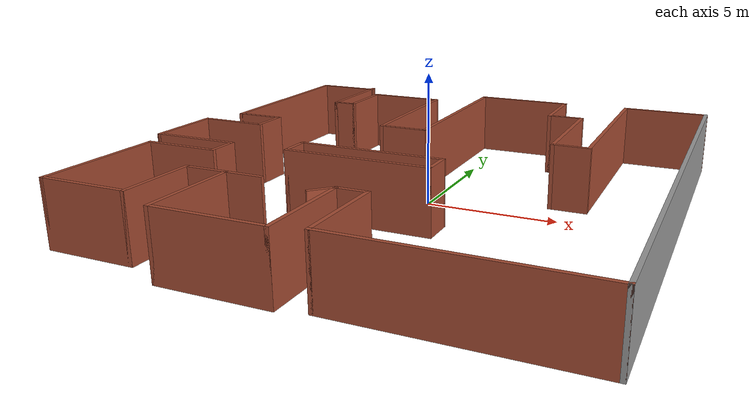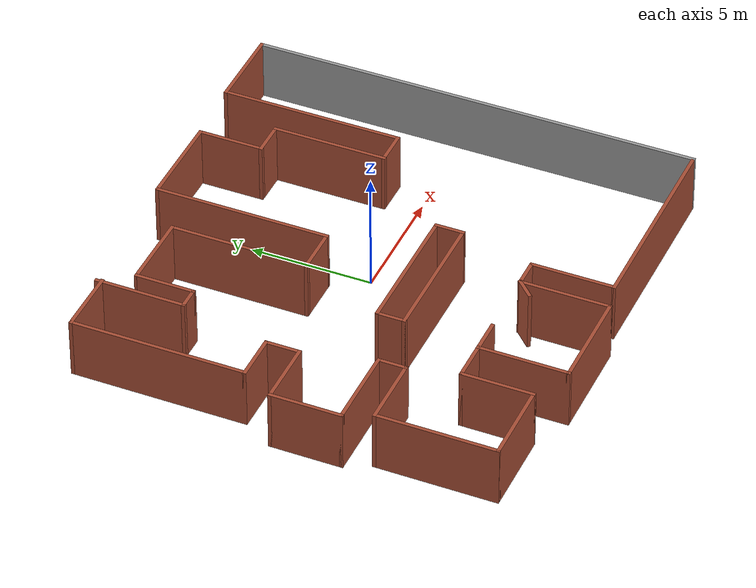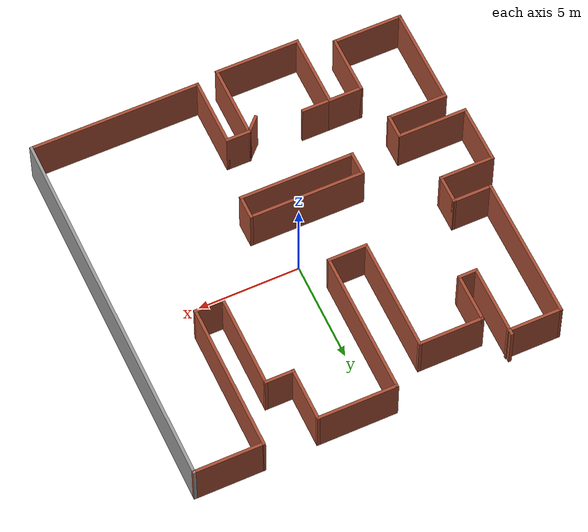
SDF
<?xml version='1.0'?>
<sdf version='1.6'>
  <model name='map_106'>
    <pose frame=''>-0.425576 -0.586137 0 0 -0 0</pose>
    <link name='Wall_16'>
      <collision name='Wall_16_Collision'>
        <geometry>
          <box>
            <size>7.25 0.15 2.5</size>
          </box>
        </geometry>
        <pose frame=''>0 0 1.25 0 -0 0</pose>
      </collision>
      <visual name='Wall_16_Visual'>
        <pose frame=''>0 0 1.25 0 -0 0</pose>
        <geometry>
          <box>
            <size>7.25 0.15 2.5</size>
          </box>
        </geometry>
        <material>
          <script>
            <uri>file://media/materials/scripts/gazebo.material</uri>
            <name>Gazebo/Bricks</name>
          </script>
          <ambient>1 1 1 1</ambient>
        </material>
        <meta>
          <layer>0</layer>
        </meta>
      </visual>
      <pose frame=''>-8.75 5.15 0 0 -0 -1.5708</pose>
    </link>
    <link name='Wall_17'>
      <collision name='Wall_17_Collision'>
        <geometry>
          <box>
            <size>2 0.15 2.5</size>
          </box>
        </geometry>
        <pose frame=''>0 0 1.25 0 -0 0</pose>
      </collision>
      <visual name='Wall_17_Visual'>
        <pose frame=''>0 0 1.25 0 -0 0</pose>
        <geometry>
          <box>
            <size>2 0.15 2.5</size>
          </box>
        </geometry>
        <material>
          <script>
            <uri>file://media/materials/scripts/gazebo.material</uri>
            <name>Gazebo/Bricks</name>
          </script>
          <ambient>1 1 1 1</ambient>
        </material>
        <meta>
          <layer>0</layer>
        </meta>
      </visual>
      <pose frame=''>-7.825 1.6 0 0 -0 0</pose>
    </link>
    <link name='Wall_18'>
      <collision name='Wall_18_Collision'>
        <geometry>
          <box>
            <size>1.5 0.15 2.5</size>
          </box>
        </geometry>
        <pose frame=''>0 0 1.25 0 -0 0</pose>
      </collision>
      <visual name='Wall_18_Visual'>
        <pose frame=''>0 0 1.25 0 -0 0</pose>
        <geometry>
          <box>
            <size>1.5 0.15 2.5</size>
          </box>
        </geometry>
        <material>
          <script>
            <uri>file://media/materials/scripts/gazebo.material</uri>
            <name>Gazebo/Bricks</name>
          </script>
          <ambient>1 1 1 1</ambient>
        </material>
        <meta>
          <layer>0</layer>
        </meta>
      </visual>
      <pose frame=''>-6.9 0.924999 0 0 -0 -1.5708</pose>
    </link>
    <link name='Wall_19'>
      <collision name='Wall_19_Collision'>
        <geometry>
          <box>
            <size>2.75 0.15 2.5</size>
          </box>
        </geometry>
        <pose frame=''>0 0 1.25 0 -0 0</pose>
      </collision>
      <visual name='Wall_19_Visual'>
        <pose frame=''>0 0 1.25 0 -0 0</pose>
        <geometry>
          <box>
            <size>2.75 0.15 2.5</size>
          </box>
        </geometry>
        <material>
          <script>
            <uri>file://media/materials/scripts/gazebo.material</uri>
            <name>Gazebo/Bricks</name>
          </script>
          <ambient>1 1 1 1</ambient>
        </material>
        <meta>
          <layer>0</layer>
        </meta>
      </visual>
      <pose frame=''>-8.2 0.249999 0 0 -0 3.14159</pose>
    </link>
    <link name='Wall_20'>
      <collision name='Wall_20_Collision'>
        <geometry>
          <box>
            <size>3 0.15 2.5</size>
          </box>
        </geometry>
        <pose frame=''>0 0 1.25 0 -0 0</pose>
      </collision>
      <visual name='Wall_20_Visual'>
        <pose frame=''>0 0 1.25 0 -0 0</pose>
        <geometry>
          <box>
            <size>3 0.15 2.5</size>
          </box>
        </geometry>
        <material>
          <script>
            <uri>file://media/materials/scripts/gazebo.material</uri>
            <name>Gazebo/Bricks</name>
          </script>
          <ambient>1 1 1 1</ambient>
        </material>
        <meta>
          <layer>0</layer>
        </meta>
      </visual>
      <pose frame=''>-9.5 -1.175 0 0 -0 -1.5708</pose>
    </link>
    <link name='Wall_21'>
      <collision name='Wall_21_Collision'>
        <geometry>
          <box>
            <size>3.5 0.15 2.5</size>
          </box>
        </geometry>
        <pose frame=''>0 0 1.25 0 -0 0</pose>
      </collision>
      <visual name='Wall_21_Visual'>
        <pose frame=''>0 0 1.25 0 -0 0</pose>
        <geometry>
          <box>
            <size>3.5 0.15 2.5</size>
          </box>
        </geometry>
        <material>
          <script>
            <uri>file://media/materials/scripts/gazebo.material</uri>
            <name>Gazebo/Bricks</name>
          </script>
          <ambient>1 1 1 1</ambient>
        </material>
        <meta>
          <layer>0</layer>
        </meta>
      </visual>
      <pose frame=''>-7.825 -2.6 0 0 -0 0</pose>
    </link>
    <link name='Wall_22'>
      <collision name='Wall_22_Collision'>
        <geometry>
          <box>
            <size>1.25 0.15 2.5</size>
          </box>
        </geometry>
        <pose frame=''>0 0 1.25 0 -0 0</pose>
      </collision>
      <visual name='Wall_22_Visual'>
        <pose frame=''>0 0 1.25 0 -0 0</pose>
        <geometry>
          <box>
            <size>1.25 0.15 2.5</size>
          </box>
        </geometry>
        <material>
          <script>
            <uri>file://media/materials/scripts/gazebo.material</uri>
            <name>Gazebo/Bricks</name>
          </script>
          <ambient>1 1 1 1</ambient>
        </material>
        <meta>
          <layer>0</layer>
        </meta>
      </visual>
      <pose frame=''>-6.15 -3.15 0 0 -0 -1.5708</pose>
    </link>
    <link name='Wall_25'>
      <collision name='Wall_25_Collision'>
        <geometry>
          <box>
            <size>3 0.15 2.5</size>
          </box>
        </geometry>
        <pose frame=''>0 0 1.25 0 -0 0</pose>
      </collision>
      <visual name='Wall_25_Visual'>
        <pose frame=''>0 0 1.25 0 -0 0</pose>
        <geometry>
          <box>
            <size>3 0.15 2.5</size>
          </box>
        </geometry>
        <material>
          <script>
            <uri>file://media/materials/scripts/gazebo.material</uri>
            <name>Gazebo/Bricks</name>
          </script>
          <ambient>1 1 1 1</ambient>
        </material>
        <meta>
          <layer>0</layer>
        </meta>
      </visual>
      <pose frame=''>-7.575 -3.7 0 0 -0 3.14159</pose>
    </link>
    <link name='Wall_26'>
      <collision name='Wall_26_Collision'>
        <geometry>
          <box>
            <size>5 0.15 2.5</size>
          </box>
        </geometry>
        <pose frame=''>0 0 1.25 0 -0 0</pose>
      </collision>
      <visual name='Wall_26_Visual'>
        <pose frame=''>0 0 1.25 0 -0 0</pose>
        <geometry>
          <box>
            <size>5 0.15 2.5</size>
          </box>
        </geometry>
        <material>
          <script>
            <uri>file://media/materials/scripts/gazebo.material</uri>
            <name>Gazebo/Bricks</name>
          </script>
          <ambient>1 1 1 1</ambient>
        </material>
        <meta>
          <layer>0</layer>
        </meta>
      </visual>
      <pose frame=''>-9 -6.125 0 0 -0 -1.5708</pose>
    </link>
    <link name='Wall_27'>
      <collision name='Wall_27_Collision'>
        <geometry>
          <box>
            <size>3.5 0.15 2.5</size>
          </box>
        </geometry>
        <pose frame=''>0 0 1.25 0 -0 0</pose>
      </collision>
      <visual name='Wall_27_Visual'>
        <pose frame=''>0 0 1.25 0 -0 0</pose>
        <geometry>
          <box>
            <size>3.5 0.15 2.5</size>
          </box>
        </geometry>
        <material>
          <script>
            <uri>file://media/materials/scripts/gazebo.material</uri>
            <name>Gazebo/Bricks</name>
          </script>
          <ambient>1 1 1 1</ambient>
        </material>
        <meta>
          <layer>0</layer>
        </meta>
      </visual>
      <pose frame=''>-7.325 -8.55 0 0 -0 0</pose>
    </link>
    <link name='Wall_28'>
      <collision name='Wall_28_Collision'>
        <geometry>
          <box>
            <size>3 0.15 2.5</size>
          </box>
        </geometry>
        <pose frame=''>0 0 1.25 0 -0 0</pose>
      </collision>
      <visual name='Wall_28_Visual'>
        <pose frame=''>0 0 1.25 0 -0 0</pose>
        <geometry>
          <box>
            <size>3 0.15 2.5</size>
          </box>
        </geometry>
        <material>
          <script>
            <uri>file://media/materials/scripts/gazebo.material</uri>
            <name>Gazebo/Bricks</name>
          </script>
          <ambient>1 1 1 1</ambient>
        </material>
        <meta>
          <layer>0</layer>
        </meta>
      </visual>
      <pose frame=''>-5.65 -7.125 0 0 -0 1.5708</pose>
    </link>
    <link name='Wall_29'>
      <collision name='Wall_29_Collision'>
        <geometry>
          <box>
            <size>1.75 0.15 2.5</size>
          </box>
        </geometry>
        <pose frame=''>0 0 1.25 0 -0 0</pose>
      </collision>
      <visual name='Wall_29_Visual'>
        <pose frame=''>0 0 1.25 0 -0 0</pose>
        <geometry>
          <box>
            <size>1.75 0.15 2.5</size>
          </box>
        </geometry>
        <material>
          <script>
            <uri>file://media/materials/scripts/gazebo.material</uri>
            <name>Gazebo/Bricks</name>
          </script>
          <ambient>1 1 1 1</ambient>
        </material>
        <meta>
          <layer>0</layer>
        </meta>
      </visual>
      <pose frame=''>-4.85 -5.7 0 0 -0 0</pose>
    </link>
    <link name='Wall_30'>
      <collision name='Wall_30_Collision'>
        <geometry>
          <box>
            <size>3.75 0.15 2.5</size>
          </box>
        </geometry>
        <pose frame=''>0 0 1.25 0 -0 0</pose>
      </collision>
      <visual name='Wall_30_Visual'>
        <pose frame=''>0 0 1.25 0 -0 0</pose>
        <geometry>
          <box>
            <size>3.75 0.15 2.5</size>
          </box>
        </geometry>
        <material>
          <script>
            <uri>file://media/materials/scripts/gazebo.material</uri>
            <name>Gazebo/Bricks</name>
          </script>
          <ambient>1 1 1 1</ambient>
        </material>
        <meta>
          <layer>0</layer>
        </meta>
      </visual>
      <pose frame=''>-4.05 -7.5 0 0 -0 -1.5708</pose>
    </link>
    <link name='Wall_31'>
      <collision name='Wall_31_Collision'>
        <geometry>
          <box>
            <size>4.25 0.15 2.5</size>
          </box>
        </geometry>
        <pose frame=''>0 0 1.25 0 -0 0</pose>
      </collision>
      <visual name='Wall_31_Visual'>
        <pose frame=''>0 0 1.25 0 -0 0</pose>
        <geometry>
          <box>
            <size>4.25 0.15 2.5</size>
          </box>
        </geometry>
        <material>
          <script>
            <uri>file://media/materials/scripts/gazebo.material</uri>
            <name>Gazebo/Bricks</name>
          </script>
          <ambient>1 1 1 1</ambient>
        </material>
        <meta>
          <layer>0</layer>
        </meta>
      </visual>
      <pose frame=''>-2 -9.3 0 0 -0 0</pose>
    </link>
    <link name='Wall_35'>
      <collision name='Wall_35_Collision'>
        <geometry>
          <box>
            <size>8.5 0.15 2.5</size>
          </box>
        </geometry>
        <pose frame=''>0 0 1.25 0 -0 0</pose>
      </collision>
      <visual name='Wall_35_Visual'>
        <pose frame=''>0 0 1.25 0 -0 0</pose>
        <geometry>
          <box>
            <size>8.5 0.15 2.5</size>
          </box>
        </geometry>
        <material>
          <script>
            <uri>file://media/materials/scripts/gazebo.material</uri>
            <name>Gazebo/Bricks</name>
          </script>
          <ambient>1 1 1 1</ambient>
        </material>
        <meta>
          <layer>0</layer>
        </meta>
      </visual>
      <pose frame=''>5.325 -9.05 0 0 -0 0</pose>
    </link>
    <link name='Wall_36'>
      <collision name='Wall_36_Collision'>
        <geometry>
          <box>
            <size>18.5 0.15 2.5</size>
          </box>
        </geometry>
        <pose frame=''>0 0 1.25 0 -0 0</pose>
      </collision>
      <visual name='Wall_36_Visual'>
        <pose frame=''>0 0 1.25 0 -0 0</pose>
        <geometry>
          <box>
            <size>18.5 0.15 2.5</size>
          </box>
        </geometry>
        <material>
          <script>
            <uri>file://media/materials/scripts/gazebo.material</uri>
            <name>Gazebo/Grey</name>
          </script>
          <ambient>1 1 1 1</ambient>
        </material>
        <meta>
          <layer>0</layer>
        </meta>
      </visual>
      <pose frame=''>9.5 0.124999 0 0 -0 1.5708</pose>
    </link>
    <link name='Wall_37'>
      <collision name='Wall_37_Collision'>
        <geometry>
          <box>
            <size>3.5 0.15 2.5</size>
          </box>
        </geometry>
        <pose frame=''>0 0 1.25 0 -0 0</pose>
      </collision>
      <visual name='Wall_37_Visual'>
        <pose frame=''>0 0 1.25 0 -0 0</pose>
        <geometry>
          <box>
            <size>3.5 0.15 2.5</size>
          </box>
        </geometry>
        <material>
          <script>
            <uri>file://media/materials/scripts/gazebo.material</uri>
            <name>Gazebo/Bricks</name>
          </script>
          <ambient>1 1 1 1</ambient>
        </material>
        <meta>
          <layer>0</layer>
        </meta>
      </visual>
      <pose frame=''>7.825 9.3 0 0 -0 3.14159</pose>
    </link>
    <link name='Wall_38'>
      <collision name='Wall_38_Collision'>
        <geometry>
          <box>
            <size>7.5 0.15 2.5</size>
          </box>
        </geometry>
        <pose frame=''>0 0 1.25 0 -0 0</pose>
      </collision>
      <visual name='Wall_38_Visual'>
        <pose frame=''>0 0 1.25 0 -0 0</pose>
        <geometry>
          <box>
            <size>7.5 0.15 2.5</size>
          </box>
        </geometry>
        <material>
          <script>
            <uri>file://media/materials/scripts/gazebo.material</uri>
            <name>Gazebo/Bricks</name>
          </script>
          <ambient>1 1 1 1</ambient>
        </material>
        <meta>
          <layer>0</layer>
        </meta>
      </visual>
      <pose frame=''>6.15 5.625 0 0 -0 -1.5708</pose>
    </link>
    <link name='Wall_39'>
      <collision name='Wall_39_Collision'>
        <geometry>
          <box>
            <size>1.5 0.15 2.5</size>
          </box>
        </geometry>
        <pose frame=''>0 0 1.25 0 -0 0</pose>
      </collision>
      <visual name='Wall_39_Visual'>
        <pose frame=''>0 0 1.25 0 -0 0</pose>
        <geometry>
          <box>
            <size>1.5 0.15 2.5</size>
          </box>
        </geometry>
        <material>
          <script>
            <uri>file://media/materials/scripts/gazebo.material</uri>
            <name>Gazebo/Bricks</name>
          </script>
          <ambient>1 1 1 1</ambient>
        </material>
        <meta>
          <layer>0</layer>
        </meta>
      </visual>
      <pose frame=''>5.475 1.95 0 0 -0 3.14159</pose>
    </link>
    <link name='Wall_40'>
      <collision name='Wall_40_Collision'>
        <geometry>
          <box>
            <size>4.75 0.15 2.5</size>
          </box>
        </geometry>
        <pose frame=''>0 0 1.25 0 -0 0</pose>
      </collision>
      <visual name='Wall_40_Visual'>
        <pose frame=''>0 0 1.25 0 -0 0</pose>
        <geometry>
          <box>
            <size>4.75 0.15 2.5</size>
          </box>
        </geometry>
        <material>
          <script>
            <uri>file://media/materials/scripts/gazebo.material</uri>
            <name>Gazebo/Bricks</name>
          </script>
          <ambient>1 1 1 1</ambient>
        </material>
        <meta>
          <layer>0</layer>
        </meta>
      </visual>
      <pose frame=''>4.8 4.25 0 0 -0 1.5708</pose>
    </link>
    <link name='Wall_41'>
      <collision name='Wall_41_Collision'>
        <geometry>
          <box>
            <size>1.5 0.15 2.5</size>
          </box>
        </geometry>
        <pose frame=''>0 0 1.25 0 -0 0</pose>
      </collision>
      <visual name='Wall_41_Visual'>
        <pose frame=''>0 0 1.25 0 -0 0</pose>
        <geometry>
          <box>
            <size>1.5 0.15 2.5</size>
          </box>
        </geometry>
        <material>
          <script>
            <uri>file://media/materials/scripts/gazebo.material</uri>
            <name>Gazebo/Bricks</name>
          </script>
          <ambient>1 1 1 1</ambient>
        </material>
        <meta>
          <layer>0</layer>
        </meta>
      </visual>
      <pose frame=''>4.125 6.55 0 0 -0 3.14159</pose>
    </link>
    <link name='Wall_42'>
      <collision name='Wall_42_Collision'>
        <geometry>
          <box>
            <size>2.75 0.15 2.5</size>
          </box>
        </geometry>
        <pose frame=''>0 0 1.25 0 -0 0</pose>
      </collision>
      <visual name='Wall_42_Visual'>
        <pose frame=''>0 0 1.25 0 -0 0</pose>
        <geometry>
          <box>
            <size>2.75 0.15 2.5</size>
          </box>
        </geometry>
        <material>
          <script>
            <uri>file://media/materials/scripts/gazebo.material</uri>
            <name>Gazebo/Bricks</name>
          </script>
          <ambient>1 1 1 1</ambient>
        </material>
        <meta>
          <layer>0</layer>
        </meta>
      </visual>
      <pose frame=''>3.45 7.85 0 0 -0 1.5708</pose>
    </link>
    <link name='Wall_43'>
      <collision name='Wall_43_Collision'>
        <geometry>
          <box>
            <size>4 0.15 2.5</size>
          </box>
        </geometry>
        <pose frame=''>0 0 1.25 0 -0 0</pose>
      </collision>
      <visual name='Wall_43_Visual'>
        <pose frame=''>0 0 1.25 0 -0 0</pose>
        <geometry>
          <box>
            <size>4 0.15 2.5</size>
          </box>
        </geometry>
        <material>
          <script>
            <uri>file://media/materials/scripts/gazebo.material</uri>
            <name>Gazebo/Bricks</name>
          </script>
          <ambient>1 1 1 1</ambient>
        </material>
        <meta>
          <layer>0</layer>
        </meta>
      </visual>
      <pose frame=''>1.525 9.15 0 0 -0 3.14159</pose>
    </link>
    <link name='Wall_67'>
      <collision name='Wall_67_Collision'>
        <geometry>
          <box>
            <size>3.75 0.15 2.5</size>
          </box>
        </geometry>
        <pose frame=''>0 0 1.25 0 -0 0</pose>
      </collision>
      <visual name='Wall_67_Visual'>
        <pose frame=''>0 0 1.25 0 -0 0</pose>
        <geometry>
          <box>
            <size>3.75 0.15 2.5</size>
          </box>
        </geometry>
        <material>
          <script>
            <uri>file://media/materials/scripts/gazebo.material</uri>
            <name>Gazebo/Bricks</name>
          </script>
          <ambient>1 1 1 1</ambient>
        </material>
        <meta>
          <layer>0</layer>
        </meta>
      </visual>
      <pose frame=''>0.05 -7.5 0 0 -0 1.5708</pose>
    </link>
    <link name='Wall_68'>
      <collision name='Wall_68_Collision'>
        <geometry>
          <box>
            <size>1.25 0.15 2.5</size>
          </box>
        </geometry>
        <pose frame=''>0 0 1.25 0 -0 0</pose>
      </collision>
      <visual name='Wall_68_Visual'>
        <pose frame=''>0 0 1.25 0 -0 0</pose>
        <geometry>
          <box>
            <size>1.25 0.15 2.5</size>
          </box>
        </geometry>
        <material>
          <script>
            <uri>file://media/materials/scripts/gazebo.material</uri>
            <name>Gazebo/Bricks</name>
          </script>
          <ambient>1 1 1 1</ambient>
        </material>
        <meta>
          <layer>0</layer>
        </meta>
      </visual>
      <pose frame=''>0.6 -5.7 0 0 -0 0</pose>
    </link>
    <link name='Wall_69'>
      <collision name='Wall_69_Collision'>
        <geometry>
          <box>
            <size>3.5 0.15 2.5</size>
          </box>
        </geometry>
        <pose frame=''>0 0 1.25 0 -0 0</pose>
      </collision>
      <visual name='Wall_69_Visual'>
        <pose frame=''>0 0 1.25 0 -0 0</pose>
        <geometry>
          <box>
            <size>3.5 0.15 2.5</size>
          </box>
        </geometry>
        <material>
          <script>
            <uri>file://media/materials/scripts/gazebo.material</uri>
            <name>Gazebo/Bricks</name>
          </script>
          <ambient>1 1 1 1</ambient>
        </material>
        <meta>
          <layer>0</layer>
        </meta>
      </visual>
      <pose frame=''>1.15 -7.375 0 0 -0 -1.5708</pose>
    </link>
    <link name='Wall_73'>
      <collision name='Wall_73_Collision'>
        <geometry>
          <box>
            <size>7.25 0.15 2.5</size>
          </box>
        </geometry>
        <pose frame=''>0 0 1.25 0 -0 0</pose>
      </collision>
      <visual name='Wall_73_Visual'>
        <pose frame=''>0 0 1.25 0 -0 0</pose>
        <geometry>
          <box>
            <size>7.25 0.15 2.5</size>
          </box>
        </geometry>
        <material>
          <script>
            <uri>file://media/materials/scripts/gazebo.material</uri>
            <name>Gazebo/Bricks</name>
          </script>
          <ambient>1 1 1 1</ambient>
        </material>
        <meta>
          <layer>0</layer>
        </meta>
      </visual>
      <pose frame=''>-0.4 5.6 0 0 -0 -1.5708</pose>
    </link>
    <link name='Wall_74'>
      <collision name='Wall_74_Collision'>
        <geometry>
          <box>
            <size>2 0.15 2.5</size>
          </box>
        </geometry>
        <pose frame=''>0 0 1.25 0 -0 0</pose>
      </collision>
      <visual name='Wall_74_Visual'>
        <pose frame=''>0 0 1.25 0 -0 0</pose>
        <geometry>
          <box>
            <size>2 0.15 2.5</size>
          </box>
        </geometry>
        <material>
          <script>
            <uri>file://media/materials/scripts/gazebo.material</uri>
            <name>Gazebo/Bricks</name>
          </script>
          <ambient>1 1 1 1</ambient>
        </material>
        <meta>
          <layer>0</layer>
        </meta>
      </visual>
      <pose frame=''>-1.325 2.05 0 0 -0 3.14159</pose>
    </link>
    <link name='Wall_75'>
      <collision name='Wall_75_Collision'>
        <geometry>
          <box>
            <size>5.75 0.15 2.5</size>
          </box>
        </geometry>
        <pose frame=''>0 0 1.25 0 -0 0</pose>
      </collision>
      <visual name='Wall_75_Visual'>
        <pose frame=''>0 0 1.25 0 -0 0</pose>
        <geometry>
          <box>
            <size>5.75 0.15 2.5</size>
          </box>
        </geometry>
        <material>
          <script>
            <uri>file://media/materials/scripts/gazebo.material</uri>
            <name>Gazebo/Bricks</name>
          </script>
          <ambient>1 1 1 1</ambient>
        </material>
        <meta>
          <layer>0</layer>
        </meta>
      </visual>
      <pose frame=''>-2.25 4.85 0 0 -0 1.5708</pose>
    </link>
    <link name='Wall_76'>
      <collision name='Wall_76_Collision'>
        <geometry>
          <box>
            <size>3.25 0.15 2.5</size>
          </box>
        </geometry>
        <pose frame=''>0 0 1.25 0 -0 0</pose>
      </collision>
      <visual name='Wall_76_Visual'>
        <pose frame=''>0 0 1.25 0 -0 0</pose>
        <geometry>
          <box>
            <size>3.25 0.15 2.5</size>
          </box>
        </geometry>
        <material>
          <script>
            <uri>file://media/materials/scripts/gazebo.material</uri>
            <name>Gazebo/Bricks</name>
          </script>
          <ambient>1 1 1 1</ambient>
        </material>
        <meta>
          <layer>0</layer>
        </meta>
      </visual>
      <pose frame=''>-3.8 7.65 0 0 -0 3.14159</pose>
    </link>
    <link name='Wall_77'>
      <collision name='Wall_77_Collision'>
        <geometry>
          <box>
            <size>2.5 0.15 2.5</size>
          </box>
        </geometry>
        <pose frame=''>0 0 1.25 0 -0 0</pose>
      </collision>
      <visual name='Wall_77_Visual'>
        <pose frame=''>0 0 1.25 0 -0 0</pose>
        <geometry>
          <box>
            <size>2.5 0.15 2.5</size>
          </box>
        </geometry>
        <material>
          <script>
            <uri>file://media/materials/scripts/gazebo.material</uri>
            <name>Gazebo/Bricks</name>
          </script>
          <ambient>1 1 1 1</ambient>
        </material>
        <meta>
          <layer>0</layer>
        </meta>
      </visual>
      <pose frame=''>-5.35 6.475 0 0 -0 -1.5708</pose>
    </link>
    <link name='Wall_80'>
      <collision name='Wall_80_Collision'>
        <geometry>
          <box>
            <size>1 0.15 2.5</size>
          </box>
        </geometry>
        <pose frame=''>0 0 1.25 0 -0 0</pose>
      </collision>
      <visual name='Wall_80_Visual'>
        <pose frame=''>0 0 1.25 0 -0 0</pose>
        <geometry>
          <box>
            <size>1 0.15 2.5</size>
          </box>
        </geometry>
        <material>
          <script>
            <uri>file://media/materials/scripts/gazebo.material</uri>
            <name>Gazebo/Bricks</name>
          </script>
          <ambient>1 1 1 1</ambient>
        </material>
        <meta>
          <layer>0</layer>
        </meta>
      </visual>
      <pose frame=''>-5.775 5.3 0 0 -0 3.14159</pose>
    </link>
    <link name='Wall_81'>
      <collision name='Wall_81_Collision'>
        <geometry>
          <box>
            <size>3.75 0.15 2.5</size>
          </box>
        </geometry>
        <pose frame=''>0 0 1.25 0 -0 0</pose>
      </collision>
      <visual name='Wall_81_Visual'>
        <pose frame=''>0 0 1.25 0 -0 0</pose>
        <geometry>
          <box>
            <size>3.75 0.15 2.5</size>
          </box>
        </geometry>
        <material>
          <script>
            <uri>file://media/materials/scripts/gazebo.material</uri>
            <name>Gazebo/Bricks</name>
          </script>
          <ambient>1 1 1 1</ambient>
        </material>
        <meta>
          <layer>0</layer>
        </meta>
      </visual>
      <pose frame=''>-6.2 7.1 0 0 -0 1.5708</pose>
    </link>
    <link name='Wall_83'>
      <collision name='Wall_83_Collision'>
        <geometry>
          <box>
            <size>2.75 0.15 2.5</size>
          </box>
        </geometry>
        <pose frame=''>0 0 1.25 0 -0 0</pose>
      </collision>
      <visual name='Wall_83_Visual'>
        <pose frame=''>0 0 1.25 0 -0 0</pose>
        <geometry>
          <box>
            <size>2.75 0.15 2.5</size>
          </box>
        </geometry>
        <material>
          <script>
            <uri>file://media/materials/scripts/gazebo.material</uri>
            <name>Gazebo/Bricks</name>
          </script>
          <ambient>1 1 1 1</ambient>
        </material>
        <meta>
          <layer>0</layer>
        </meta>
      </visual>
      <pose frame=''>-7.45 8.7 0 0 -0 0</pose>
    </link>
    <link name='Wall_85'>
      <collision name='Wall_85_Collision'>
        <geometry>
          <box>
            <size>1.5 0.15 2.5</size>
          </box>
        </geometry>
        <pose frame=''>0 0 1.25 0 -0 0</pose>
      </collision>
      <visual name='Wall_85_Visual'>
        <pose frame=''>0 0 1.25 0 -0 0</pose>
        <geometry>
          <box>
            <size>1.5 0.15 2.5</size>
          </box>
        </geometry>
        <material>
          <script>
            <uri>file://media/materials/scripts/gazebo.material</uri>
            <name>Gazebo/Bricks</name>
          </script>
          <ambient>1 1 1 1</ambient>
        </material>
        <meta>
          <layer>0</layer>
        </meta>
      </visual>
      <pose frame=''>-3.375 -5.7 0 0 -0 0</pose>
    </link>
    <link name='Wall_87'>
      <collision name='Wall_87_Collision'>
        <geometry>
          <box>
            <size>1 0.15 2.5</size>
          </box>
        </geometry>
        <pose frame=''>0 0 1.25 0 -0 0</pose>
      </collision>
      <visual name='Wall_87_Visual'>
        <pose frame=''>0 0 1.25 0 -0 0</pose>
        <geometry>
          <box>
            <size>1 0.15 2.5</size>
          </box>
        </geometry>
        <material>
          <script>
            <uri>file://media/materials/scripts/gazebo.material</uri>
            <name>Gazebo/Bricks</name>
          </script>
          <ambient>1 1 1 1</ambient>
        </material>
        <meta>
          <layer>0</layer>
        </meta>
      </visual>
      <pose frame=''>-0.25052 -6.00052 0 0 -0 -2.35619</pose>
    </link>
    <link name='Wall_89'>
      <collision name='Wall_89_Collision'>
        <geometry>
          <box>
            <size>1.25 0.15 2.5</size>
          </box>
        </geometry>
        <pose frame=''>0 0 1.25 0 -0 0</pose>
      </collision>
      <visual name='Wall_89_Visual'>
        <pose frame=''>0 0 1.25 0 -0 0</pose>
        <geometry>
          <box>
            <size>1.25 0.15 2.5</size>
          </box>
        </geometry>
        <material>
          <script>
            <uri>file://media/materials/scripts/gazebo.material</uri>
            <name>Gazebo/Bricks</name>
          </script>
          <ambient>1 1 1 1</ambient>
        </material>
        <meta>
          <layer>0</layer>
        </meta>
      </visual>
      <pose frame=''>-3.74847 -2.05408 0 0 -0 -1.5708</pose>
    </link>
    <link name='Wall_90'>
      <collision name='Wall_90_Collision'>
        <geometry>
          <box>
            <size>5.75 0.15 2.5</size>
          </box>
        </geometry>
        <pose frame=''>0 0 1.25 0 -0 0</pose>
      </collision>
      <visual name='Wall_90_Visual'>
        <pose frame=''>0 0 1.25 0 -0 0</pose>
        <geometry>
          <box>
            <size>5.75 0.15 2.5</size>
          </box>
        </geometry>
        <material>
          <script>
            <uri>file://media/materials/scripts/gazebo.material</uri>
            <name>Gazebo/Bricks</name>
          </script>
          <ambient>1 1 1 1</ambient>
        </material>
        <meta>
          <layer>0</layer>
        </meta>
      </visual>
      <pose frame=''>-0.948472 -2.60408 0 0 -0 0</pose>
    </link>
    <link name='Wall_91'>
      <collision name='Wall_91_Collision'>
        <geometry>
          <box>
            <size>1.25 0.15 2.5</size>
          </box>
        </geometry>
        <pose frame=''>0 0 1.25 0 -0 0</pose>
      </collision>
      <visual name='Wall_91_Visual'>
        <pose frame=''>0 0 1.25 0 -0 0</pose>
        <geometry>
          <box>
            <size>1.25 0.15 2.5</size>
          </box>
        </geometry>
        <material>
          <script>
            <uri>file://media/materials/scripts/gazebo.material</uri>
            <name>Gazebo/Bricks</name>
          </script>
          <ambient>1 1 1 1</ambient>
        </material>
        <meta>
          <layer>0</layer>
        </meta>
      </visual>
      <pose frame=''>1.85153 -2.05408 0 0 -0 1.5708</pose>
    </link>
    <link name='Wall_92'>
      <collision name='Wall_92_Collision'>
        <geometry>
          <box>
            <size>5.75 0.15 2.5</size>
          </box>
        </geometry>
        <pose frame=''>0 0 1.25 0 -0 0</pose>
      </collision>
      <visual name='Wall_92_Visual'>
        <pose frame=''>0 0 1.25 0 -0 0</pose>
        <geometry>
          <box>
            <size>5.75 0.15 2.5</size>
          </box>
        </geometry>
        <material>
          <script>
            <uri>file://media/materials/scripts/gazebo.material</uri>
            <name>Gazebo/Bricks</name>
          </script>
          <ambient>1 1 1 1</ambient>
        </material>
        <meta>
          <layer>0</layer>
        </meta>
      </visual>
      <pose frame=''>-0.948472 -1.50408 0 0 -0 3.14159</pose>
    </link>
    <static>1</static>
  </model>
</sdf>
